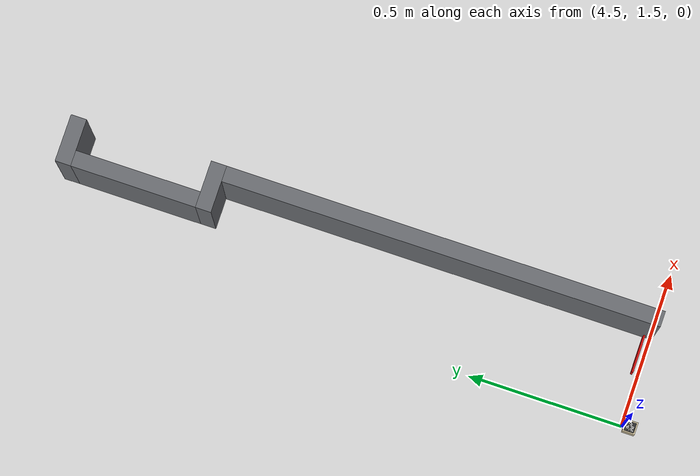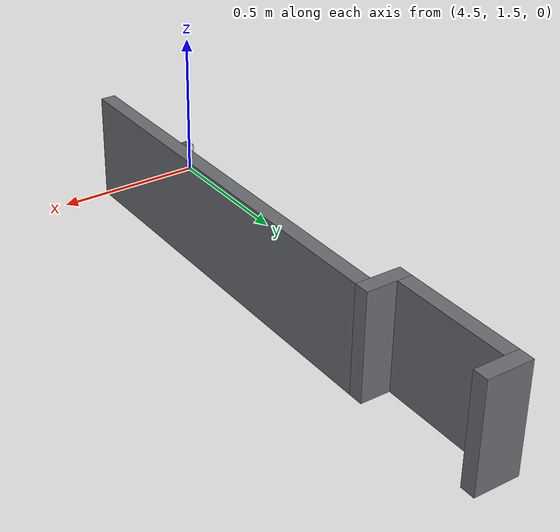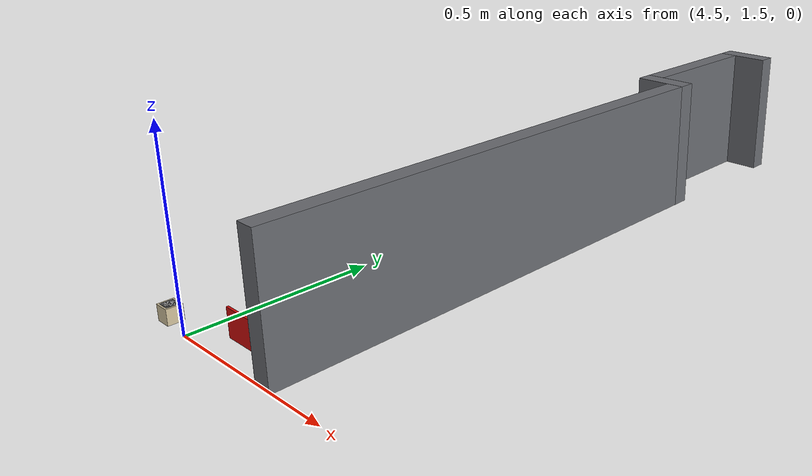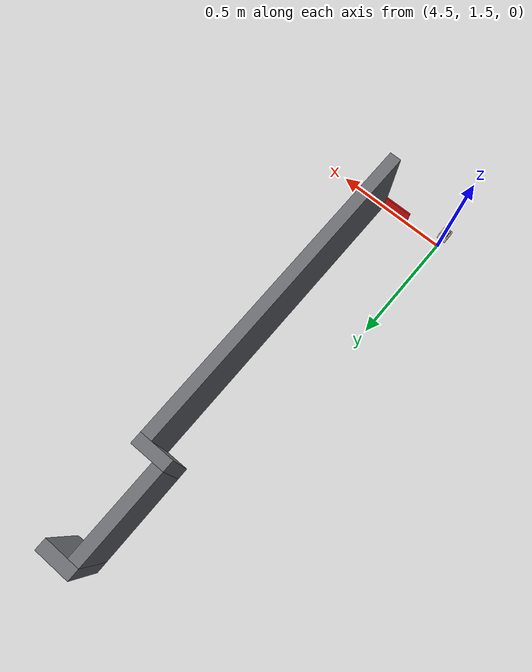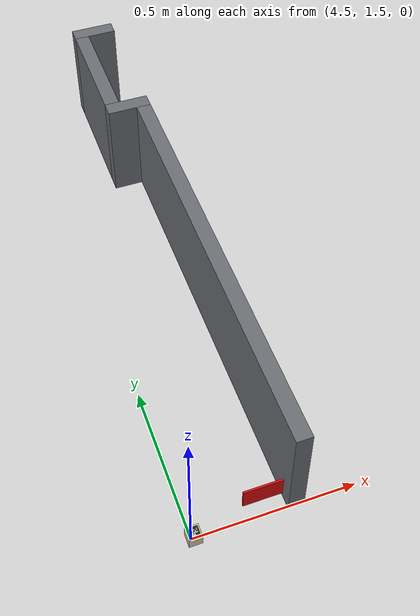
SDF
<sdf version="1.9">
 <world name="arena">
  <model name="map_wall_9">
   <static>true</static>
   <pose>4.76400 3.37000 0.18000 0 0 0.0000000</pose>
   <link name="body">
    <collision name="collision"><geometry><box><size>0.15000 0.05000 0.36000</size></box></geometry></collision>
    <visual name="appearance">
     <geometry><box><size>0.15000 0.05000 0.36000</size></box></geometry>
     <material><ambient>0.42 0.43 0.45 1</ambient><diffuse>0.42 0.43 0.45 1</diffuse></material>
    </visual>
   </link>
  </model>
  <model name="map_wall_10">
   <static>true</static>
   <pose>4.71400 3.14500 0.18000 0 0 0.0000000</pose>
   <link name="body">
    <collision name="collision"><geometry><box><size>0.05000 0.40000 0.36000</size></box></geometry></collision>
    <visual name="appearance">
     <geometry><box><size>0.05000 0.40000 0.36000</size></box></geometry>
     <material><ambient>0.42 0.43 0.45 1</ambient><diffuse>0.42 0.43 0.45 1</diffuse></material>
    </visual>
   </link>
  </model>
  <model name="map_wall_11">
   <static>true</static>
   <pose>4.76400 2.92000 0.18000 0 0 0.0000000</pose>
   <link name="body">
    <collision name="collision"><geometry><box><size>0.15000 0.05000 0.36000</size></box></geometry></collision>
    <visual name="appearance">
     <geometry><box><size>0.15000 0.05000 0.36000</size></box></geometry>
     <material><ambient>0.42 0.43 0.45 1</ambient><diffuse>0.42 0.43 0.45 1</diffuse></material>
    </visual>
   </link>
  </model>
  <model name="map_wall_12">
   <static>true</static>
   <pose>4.81400 2.19500 0.18000 0 0 0.0000000</pose>
   <link name="body">
    <collision name="collision"><geometry><box><size>0.05000 1.40000 0.36000</size></box></geometry></collision>
    <visual name="appearance">
     <geometry><box><size>0.05000 1.40000 0.36000</size></box></geometry>
     <material><ambient>0.42 0.43 0.45 1</ambient><diffuse>0.42 0.43 0.45 1</diffuse></material>
    </visual>
   </link>
  </model>
  <model name="cube_10">
   <pose>4.50026 1.47708 0.07000 0 0 0</pose>
   <link name="body">
    <inertial>
     <mass>0.04</mass>
     <inertia>
      <ixx>0.000010667</ixx>
      <iyy>0.000010667</iyy>
      <izz>0.000010667</izz>
      <ixy>0</ixy>
      <ixz>0</ixz>
      <iyz>0</iyz>
     </inertia>
    </inertial>
    <collision name="cube">
     <geometry><box><size>0.04 0.04 0.04</size></box></geometry>
     <surface><friction><ode><mu>1.2</mu><mu2>1.2</mu2></ode></friction></surface>
    </collision>
    <visual name="cube_appearance">
     <geometry><box><size>0.04 0.04 0.04</size></box></geometry>
     <material><ambient>0.85 0.79 0.64 1</ambient><diffuse>0.85 0.79 0.64 1</diffuse></material>
    </visual>
    <visual name="tag_0_0">
     <pose>-0.0140 0.0140 0.0202 0 0 0</pose>
     <geometry><plane><normal>0 0 1</normal><size>0.004 0.004</size></plane></geometry>
     <material><ambient>0.01 0.01 0.01 1</ambient><diffuse>0.01 0.01 0.01 1</diffuse></material>
    </visual>
    <visual name="tag_0_1">
     <pose>-0.0100 0.0140 0.0202 0 0 0</pose>
     <geometry><plane><normal>0 0 1</normal><size>0.004 0.004</size></plane></geometry>
     <material><ambient>0.01 0.01 0.01 1</ambient><diffuse>0.01 0.01 0.01 1</diffuse></material>
    </visual>
    <visual name="tag_0_2">
     <pose>-0.0060 0.0140 0.0202 0 0 0</pose>
     <geometry><plane><normal>0 0 1</normal><size>0.004 0.004</size></plane></geometry>
     <material><ambient>0.01 0.01 0.01 1</ambient><diffuse>0.01 0.01 0.01 1</diffuse></material>
    </visual>
    <visual name="tag_0_3">
     <pose>-0.0020 0.0140 0.0202 0 0 0</pose>
     <geometry><plane><normal>0 0 1</normal><size>0.004 0.004</size></plane></geometry>
     <material><ambient>0.01 0.01 0.01 1</ambient><diffuse>0.01 0.01 0.01 1</diffuse></material>
    </visual>
    <visual name="tag_0_4">
     <pose>0.0020 0.0140 0.0202 0 0 0</pose>
     <geometry><plane><normal>0 0 1</normal><size>0.004 0.004</size></plane></geometry>
     <material><ambient>0.01 0.01 0.01 1</ambient><diffuse>0.01 0.01 0.01 1</diffuse></material>
    </visual>
    <visual name="tag_0_5">
     <pose>0.0060 0.0140 0.0202 0 0 0</pose>
     <geometry><plane><normal>0 0 1</normal><size>0.004 0.004</size></plane></geometry>
     <material><ambient>0.01 0.01 0.01 1</ambient><diffuse>0.01 0.01 0.01 1</diffuse></material>
    </visual>
    <visual name="tag_0_6">
     <pose>0.0100 0.0140 0.0202 0 0 0</pose>
     <geometry><plane><normal>0 0 1</normal><size>0.004 0.004</size></plane></geometry>
     <material><ambient>0.01 0.01 0.01 1</ambient><diffuse>0.01 0.01 0.01 1</diffuse></material>
    </visual>
    <visual name="tag_0_7">
     <pose>0.0140 0.0140 0.0202 0 0 0</pose>
     <geometry><plane><normal>0 0 1</normal><size>0.004 0.004</size></plane></geometry>
     <material><ambient>0.01 0.01 0.01 1</ambient><diffuse>0.01 0.01 0.01 1</diffuse></material>
    </visual>
    <visual name="tag_1_0">
     <pose>-0.0140 0.0100 0.0202 0 0 0</pose>
     <geometry><plane><normal>0 0 1</normal><size>0.004 0.004</size></plane></geometry>
     <material><ambient>0.01 0.01 0.01 1</ambient><diffuse>0.01 0.01 0.01 1</diffuse></material>
    </visual>
    <visual name="tag_1_1">
     <pose>-0.0100 0.0100 0.0202 0 0 0</pose>
     <geometry><plane><normal>0 0 1</normal><size>0.004 0.004</size></plane></geometry>
     <material><ambient>0.01 0.01 0.01 1</ambient><diffuse>0.01 0.01 0.01 1</diffuse></material>
    </visual>
    <visual name="tag_1_2">
     <pose>-0.0060 0.0100 0.0202 0 0 0</pose>
     <geometry><plane><normal>0 0 1</normal><size>0.004 0.004</size></plane></geometry>
     <material><ambient>0.95 0.95 0.95 1</ambient><diffuse>0.95 0.95 0.95 1</diffuse></material>
    </visual>
    <visual name="tag_1_3">
     <pose>-0.0020 0.0100 0.0202 0 0 0</pose>
     <geometry><plane><normal>0 0 1</normal><size>0.004 0.004</size></plane></geometry>
     <material><ambient>0.95 0.95 0.95 1</ambient><diffuse>0.95 0.95 0.95 1</diffuse></material>
    </visual>
    <visual name="tag_1_4">
     <pose>0.0020 0.0100 0.0202 0 0 0</pose>
     <geometry><plane><normal>0 0 1</normal><size>0.004 0.004</size></plane></geometry>
     <material><ambient>0.01 0.01 0.01 1</ambient><diffuse>0.01 0.01 0.01 1</diffuse></material>
    </visual>
    <visual name="tag_1_5">
     <pose>0.0060 0.0100 0.0202 0 0 0</pose>
     <geometry><plane><normal>0 0 1</normal><size>0.004 0.004</size></plane></geometry>
     <material><ambient>0.01 0.01 0.01 1</ambient><diffuse>0.01 0.01 0.01 1</diffuse></material>
    </visual>
    <visual name="tag_1_6">
     <pose>0.0100 0.0100 0.0202 0 0 0</pose>
     <geometry><plane><normal>0 0 1</normal><size>0.004 0.004</size></plane></geometry>
     <material><ambient>0.01 0.01 0.01 1</ambient><diffuse>0.01 0.01 0.01 1</diffuse></material>
    </visual>
    <visual name="tag_1_7">
     <pose>0.0140 0.0100 0.0202 0 0 0</pose>
     <geometry><plane><normal>0 0 1</normal><size>0.004 0.004</size></plane></geometry>
     <material><ambient>0.01 0.01 0.01 1</ambient><diffuse>0.01 0.01 0.01 1</diffuse></material>
    </visual>
    <visual name="tag_2_0">
     <pose>-0.0140 0.0060 0.0202 0 0 0</pose>
     <geometry><plane><normal>0 0 1</normal><size>0.004 0.004</size></plane></geometry>
     <material><ambient>0.01 0.01 0.01 1</ambient><diffuse>0.01 0.01 0.01 1</diffuse></material>
    </visual>
    <visual name="tag_2_1">
     <pose>-0.0100 0.0060 0.0202 0 0 0</pose>
     <geometry><plane><normal>0 0 1</normal><size>0.004 0.004</size></plane></geometry>
     <material><ambient>0.01 0.01 0.01 1</ambient><diffuse>0.01 0.01 0.01 1</diffuse></material>
    </visual>
    <visual name="tag_2_2">
     <pose>-0.0060 0.0060 0.0202 0 0 0</pose>
     <geometry><plane><normal>0 0 1</normal><size>0.004 0.004</size></plane></geometry>
     <material><ambient>0.95 0.95 0.95 1</ambient><diffuse>0.95 0.95 0.95 1</diffuse></material>
    </visual>
    <visual name="tag_2_3">
     <pose>-0.0020 0.0060 0.0202 0 0 0</pose>
     <geometry><plane><normal>0 0 1</normal><size>0.004 0.004</size></plane></geometry>
     <material><ambient>0.95 0.95 0.95 1</ambient><diffuse>0.95 0.95 0.95 1</diffuse></material>
    </visual>
    <visual name="tag_2_4">
     <pose>0.0020 0.0060 0.0202 0 0 0</pose>
     <geometry><plane><normal>0 0 1</normal><size>0.004 0.004</size></plane></geometry>
     <material><ambient>0.95 0.95 0.95 1</ambient><diffuse>0.95 0.95 0.95 1</diffuse></material>
    </visual>
    <visual name="tag_2_5">
     <pose>0.0060 0.0060 0.0202 0 0 0</pose>
     <geometry><plane><normal>0 0 1</normal><size>0.004 0.004</size></plane></geometry>
     <material><ambient>0.01 0.01 0.01 1</ambient><diffuse>0.01 0.01 0.01 1</diffuse></material>
    </visual>
    <visual name="tag_2_6">
     <pose>0.0100 0.0060 0.0202 0 0 0</pose>
     <geometry><plane><normal>0 0 1</normal><size>0.004 0.004</size></plane></geometry>
     <material><ambient>0.95 0.95 0.95 1</ambient><diffuse>0.95 0.95 0.95 1</diffuse></material>
    </visual>
    <visual name="tag_2_7">
     <pose>0.0140 0.0060 0.0202 0 0 0</pose>
     <geometry><plane><normal>0 0 1</normal><size>0.004 0.004</size></plane></geometry>
     <material><ambient>0.01 0.01 0.01 1</ambient><diffuse>0.01 0.01 0.01 1</diffuse></material>
    </visual>
    <visual name="tag_3_0">
     <pose>-0.0140 0.0020 0.0202 0 0 0</pose>
     <geometry><plane><normal>0 0 1</normal><size>0.004 0.004</size></plane></geometry>
     <material><ambient>0.01 0.01 0.01 1</ambient><diffuse>0.01 0.01 0.01 1</diffuse></material>
    </visual>
    <visual name="tag_3_1">
     <pose>-0.0100 0.0020 0.0202 0 0 0</pose>
     <geometry><plane><normal>0 0 1</normal><size>0.004 0.004</size></plane></geometry>
     <material><ambient>0.95 0.95 0.95 1</ambient><diffuse>0.95 0.95 0.95 1</diffuse></material>
    </visual>
    <visual name="tag_3_2">
     <pose>-0.0060 0.0020 0.0202 0 0 0</pose>
     <geometry><plane><normal>0 0 1</normal><size>0.004 0.004</size></plane></geometry>
     <material><ambient>0.01 0.01 0.01 1</ambient><diffuse>0.01 0.01 0.01 1</diffuse></material>
    </visual>
    <visual name="tag_3_3">
     <pose>-0.0020 0.0020 0.0202 0 0 0</pose>
     <geometry><plane><normal>0 0 1</normal><size>0.004 0.004</size></plane></geometry>
     <material><ambient>0.01 0.01 0.01 1</ambient><diffuse>0.01 0.01 0.01 1</diffuse></material>
    </visual>
    <visual name="tag_3_4">
     <pose>0.0020 0.0020 0.0202 0 0 0</pose>
     <geometry><plane><normal>0 0 1</normal><size>0.004 0.004</size></plane></geometry>
     <material><ambient>0.01 0.01 0.01 1</ambient><diffuse>0.01 0.01 0.01 1</diffuse></material>
    </visual>
    <visual name="tag_3_5">
     <pose>0.0060 0.0020 0.0202 0 0 0</pose>
     <geometry><plane><normal>0 0 1</normal><size>0.004 0.004</size></plane></geometry>
     <material><ambient>0.95 0.95 0.95 1</ambient><diffuse>0.95 0.95 0.95 1</diffuse></material>
    </visual>
    <visual name="tag_3_6">
     <pose>0.0100 0.0020 0.0202 0 0 0</pose>
     <geometry><plane><normal>0 0 1</normal><size>0.004 0.004</size></plane></geometry>
     <material><ambient>0.01 0.01 0.01 1</ambient><diffuse>0.01 0.01 0.01 1</diffuse></material>
    </visual>
    <visual name="tag_3_7">
     <pose>0.0140 0.0020 0.0202 0 0 0</pose>
     <geometry><plane><normal>0 0 1</normal><size>0.004 0.004</size></plane></geometry>
     <material><ambient>0.01 0.01 0.01 1</ambient><diffuse>0.01 0.01 0.01 1</diffuse></material>
    </visual>
    <visual name="tag_4_0">
     <pose>-0.0140 -0.0020 0.0202 0 0 0</pose>
     <geometry><plane><normal>0 0 1</normal><size>0.004 0.004</size></plane></geometry>
     <material><ambient>0.01 0.01 0.01 1</ambient><diffuse>0.01 0.01 0.01 1</diffuse></material>
    </visual>
    <visual name="tag_4_1">
     <pose>-0.0100 -0.0020 0.0202 0 0 0</pose>
     <geometry><plane><normal>0 0 1</normal><size>0.004 0.004</size></plane></geometry>
     <material><ambient>0.01 0.01 0.01 1</ambient><diffuse>0.01 0.01 0.01 1</diffuse></material>
    </visual>
    <visual name="tag_4_2">
     <pose>-0.0060 -0.0020 0.0202 0 0 0</pose>
     <geometry><plane><normal>0 0 1</normal><size>0.004 0.004</size></plane></geometry>
     <material><ambient>0.95 0.95 0.95 1</ambient><diffuse>0.95 0.95 0.95 1</diffuse></material>
    </visual>
    <visual name="tag_4_3">
     <pose>-0.0020 -0.0020 0.0202 0 0 0</pose>
     <geometry><plane><normal>0 0 1</normal><size>0.004 0.004</size></plane></geometry>
     <material><ambient>0.01 0.01 0.01 1</ambient><diffuse>0.01 0.01 0.01 1</diffuse></material>
    </visual>
    <visual name="tag_4_4">
     <pose>0.0020 -0.0020 0.0202 0 0 0</pose>
     <geometry><plane><normal>0 0 1</normal><size>0.004 0.004</size></plane></geometry>
     <material><ambient>0.95 0.95 0.95 1</ambient><diffuse>0.95 0.95 0.95 1</diffuse></material>
    </visual>
    <visual name="tag_4_5">
     <pose>0.0060 -0.0020 0.0202 0 0 0</pose>
     <geometry><plane><normal>0 0 1</normal><size>0.004 0.004</size></plane></geometry>
     <material><ambient>0.95 0.95 0.95 1</ambient><diffuse>0.95 0.95 0.95 1</diffuse></material>
    </visual>
    <visual name="tag_4_6">
     <pose>0.0100 -0.0020 0.0202 0 0 0</pose>
     <geometry><plane><normal>0 0 1</normal><size>0.004 0.004</size></plane></geometry>
     <material><ambient>0.95 0.95 0.95 1</ambient><diffuse>0.95 0.95 0.95 1</diffuse></material>
    </visual>
    <visual name="tag_4_7">
     <pose>0.0140 -0.0020 0.0202 0 0 0</pose>
     <geometry><plane><normal>0 0 1</normal><size>0.004 0.004</size></plane></geometry>
     <material><ambient>0.01 0.01 0.01 1</ambient><diffuse>0.01 0.01 0.01 1</diffuse></material>
    </visual>
    <visual name="tag_5_0">
     <pose>-0.0140 -0.0060 0.0202 0 0 0</pose>
     <geometry><plane><normal>0 0 1</normal><size>0.004 0.004</size></plane></geometry>
     <material><ambient>0.01 0.01 0.01 1</ambient><diffuse>0.01 0.01 0.01 1</diffuse></material>
    </visual>
    <visual name="tag_5_1">
     <pose>-0.0100 -0.0060 0.0202 0 0 0</pose>
     <geometry><plane><normal>0 0 1</normal><size>0.004 0.004</size></plane></geometry>
     <material><ambient>0.95 0.95 0.95 1</ambient><diffuse>0.95 0.95 0.95 1</diffuse></material>
    </visual>
    <visual name="tag_5_2">
     <pose>-0.0060 -0.0060 0.0202 0 0 0</pose>
     <geometry><plane><normal>0 0 1</normal><size>0.004 0.004</size></plane></geometry>
     <material><ambient>0.95 0.95 0.95 1</ambient><diffuse>0.95 0.95 0.95 1</diffuse></material>
    </visual>
    <visual name="tag_5_3">
     <pose>-0.0020 -0.0060 0.0202 0 0 0</pose>
     <geometry><plane><normal>0 0 1</normal><size>0.004 0.004</size></plane></geometry>
     <material><ambient>0.95 0.95 0.95 1</ambient><diffuse>0.95 0.95 0.95 1</diffuse></material>
    </visual>
    <visual name="tag_5_4">
     <pose>0.0020 -0.0060 0.0202 0 0 0</pose>
     <geometry><plane><normal>0 0 1</normal><size>0.004 0.004</size></plane></geometry>
     <material><ambient>0.95 0.95 0.95 1</ambient><diffuse>0.95 0.95 0.95 1</diffuse></material>
    </visual>
    <visual name="tag_5_5">
     <pose>0.0060 -0.0060 0.0202 0 0 0</pose>
     <geometry><plane><normal>0 0 1</normal><size>0.004 0.004</size></plane></geometry>
     <material><ambient>0.01 0.01 0.01 1</ambient><diffuse>0.01 0.01 0.01 1</diffuse></material>
    </visual>
    <visual name="tag_5_6">
     <pose>0.0100 -0.0060 0.0202 0 0 0</pose>
     <geometry><plane><normal>0 0 1</normal><size>0.004 0.004</size></plane></geometry>
     <material><ambient>0.01 0.01 0.01 1</ambient><diffuse>0.01 0.01 0.01 1</diffuse></material>
    </visual>
    <visual name="tag_5_7">
     <pose>0.0140 -0.0060 0.0202 0 0 0</pose>
     <geometry><plane><normal>0 0 1</normal><size>0.004 0.004</size></plane></geometry>
     <material><ambient>0.01 0.01 0.01 1</ambient><diffuse>0.01 0.01 0.01 1</diffuse></material>
    </visual>
    <visual name="tag_6_0">
     <pose>-0.0140 -0.0100 0.0202 0 0 0</pose>
     <geometry><plane><normal>0 0 1</normal><size>0.004 0.004</size></plane></geometry>
     <material><ambient>0.01 0.01 0.01 1</ambient><diffuse>0.01 0.01 0.01 1</diffuse></material>
    </visual>
    <visual name="tag_6_1">
     <pose>-0.0100 -0.0100 0.0202 0 0 0</pose>
     <geometry><plane><normal>0 0 1</normal><size>0.004 0.004</size></plane></geometry>
     <material><ambient>0.95 0.95 0.95 1</ambient><diffuse>0.95 0.95 0.95 1</diffuse></material>
    </visual>
    <visual name="tag_6_2">
     <pose>-0.0060 -0.0100 0.0202 0 0 0</pose>
     <geometry><plane><normal>0 0 1</normal><size>0.004 0.004</size></plane></geometry>
     <material><ambient>0.01 0.01 0.01 1</ambient><diffuse>0.01 0.01 0.01 1</diffuse></material>
    </visual>
    <visual name="tag_6_3">
     <pose>-0.0020 -0.0100 0.0202 0 0 0</pose>
     <geometry><plane><normal>0 0 1</normal><size>0.004 0.004</size></plane></geometry>
     <material><ambient>0.95 0.95 0.95 1</ambient><diffuse>0.95 0.95 0.95 1</diffuse></material>
    </visual>
    <visual name="tag_6_4">
     <pose>0.0020 -0.0100 0.0202 0 0 0</pose>
     <geometry><plane><normal>0 0 1</normal><size>0.004 0.004</size></plane></geometry>
     <material><ambient>0.95 0.95 0.95 1</ambient><diffuse>0.95 0.95 0.95 1</diffuse></material>
    </visual>
    <visual name="tag_6_5">
     <pose>0.0060 -0.0100 0.0202 0 0 0</pose>
     <geometry><plane><normal>0 0 1</normal><size>0.004 0.004</size></plane></geometry>
     <material><ambient>0.01 0.01 0.01 1</ambient><diffuse>0.01 0.01 0.01 1</diffuse></material>
    </visual>
    <visual name="tag_6_6">
     <pose>0.0100 -0.0100 0.0202 0 0 0</pose>
     <geometry><plane><normal>0 0 1</normal><size>0.004 0.004</size></plane></geometry>
     <material><ambient>0.01 0.01 0.01 1</ambient><diffuse>0.01 0.01 0.01 1</diffuse></material>
    </visual>
    <visual name="tag_6_7">
     <pose>0.0140 -0.0100 0.0202 0 0 0</pose>
     <geometry><plane><normal>0 0 1</normal><size>0.004 0.004</size></plane></geometry>
     <material><ambient>0.01 0.01 0.01 1</ambient><diffuse>0.01 0.01 0.01 1</diffuse></material>
    </visual>
    <visual name="tag_7_0">
     <pose>-0.0140 -0.0140 0.0202 0 0 0</pose>
     <geometry><plane><normal>0 0 1</normal><size>0.004 0.004</size></plane></geometry>
     <material><ambient>0.01 0.01 0.01 1</ambient><diffuse>0.01 0.01 0.01 1</diffuse></material>
    </visual>
    <visual name="tag_7_1">
     <pose>-0.0100 -0.0140 0.0202 0 0 0</pose>
     <geometry><plane><normal>0 0 1</normal><size>0.004 0.004</size></plane></geometry>
     <material><ambient>0.01 0.01 0.01 1</ambient><diffuse>0.01 0.01 0.01 1</diffuse></material>
    </visual>
    <visual name="tag_7_2">
     <pose>-0.0060 -0.0140 0.0202 0 0 0</pose>
     <geometry><plane><normal>0 0 1</normal><size>0.004 0.004</size></plane></geometry>
     <material><ambient>0.01 0.01 0.01 1</ambient><diffuse>0.01 0.01 0.01 1</diffuse></material>
    </visual>
    <visual name="tag_7_3">
     <pose>-0.0020 -0.0140 0.0202 0 0 0</pose>
     <geometry><plane><normal>0 0 1</normal><size>0.004 0.004</size></plane></geometry>
     <material><ambient>0.01 0.01 0.01 1</ambient><diffuse>0.01 0.01 0.01 1</diffuse></material>
    </visual>
    <visual name="tag_7_4">
     <pose>0.0020 -0.0140 0.0202 0 0 0</pose>
     <geometry><plane><normal>0 0 1</normal><size>0.004 0.004</size></plane></geometry>
     <material><ambient>0.01 0.01 0.01 1</ambient><diffuse>0.01 0.01 0.01 1</diffuse></material>
    </visual>
    <visual name="tag_7_5">
     <pose>0.0060 -0.0140 0.0202 0 0 0</pose>
     <geometry><plane><normal>0 0 1</normal><size>0.004 0.004</size></plane></geometry>
     <material><ambient>0.01 0.01 0.01 1</ambient><diffuse>0.01 0.01 0.01 1</diffuse></material>
    </visual>
    <visual name="tag_7_6">
     <pose>0.0100 -0.0140 0.0202 0 0 0</pose>
     <geometry><plane><normal>0 0 1</normal><size>0.004 0.004</size></plane></geometry>
     <material><ambient>0.01 0.01 0.01 1</ambient><diffuse>0.01 0.01 0.01 1</diffuse></material>
    </visual>
    <visual name="tag_7_7">
     <pose>0.0140 -0.0140 0.0202 0 0 0</pose>
     <geometry><plane><normal>0 0 1</normal><size>0.004 0.004</size></plane></geometry>
     <material><ambient>0.01 0.01 0.01 1</ambient><diffuse>0.01 0.01 0.01 1</diffuse></material>
    </visual>
   </link>
  </model>
  <model name="ws_1_red_left">
   <static>true</static>
   <pose>4.72027 1.52425 0.08650 0 0 0.0000000</pose>
   <link name="body">
    <collision name="collision"><geometry><box><size>0.12000 0.00600 0.07300</size></box></geometry></collision>
    <visual name="appearance">
     <geometry><box><size>0.12000 0.00600 0.07300</size></box></geometry>
     <material><ambient>0.85 0.05 0.04 1</ambient><diffuse>0.85 0.05 0.04 1</diffuse></material>
    </visual>
   </link>
  </model>
 </world>
</sdf>
